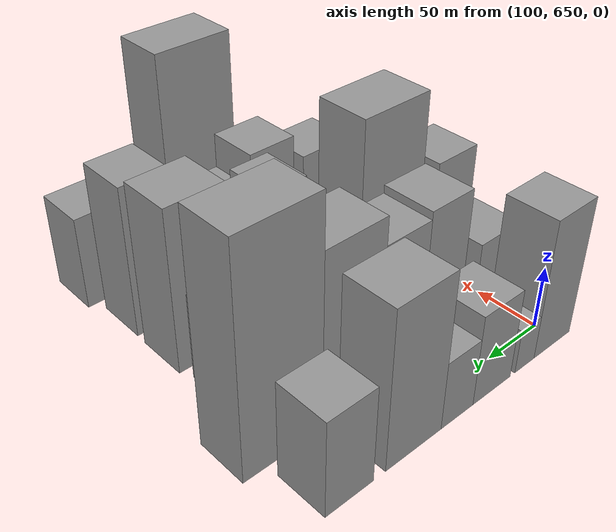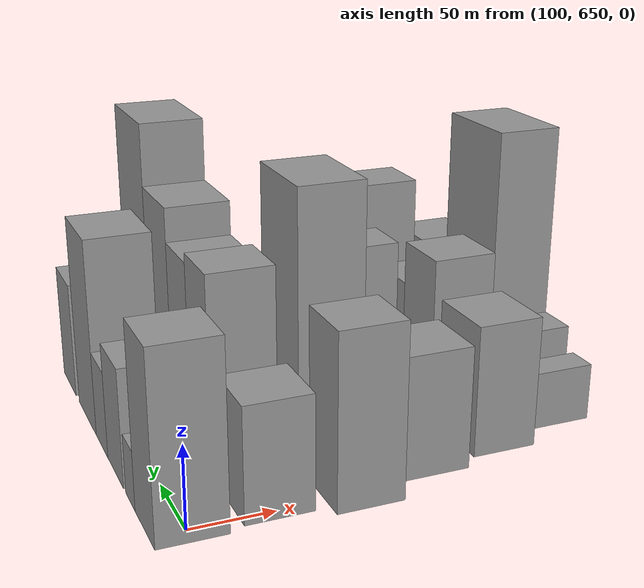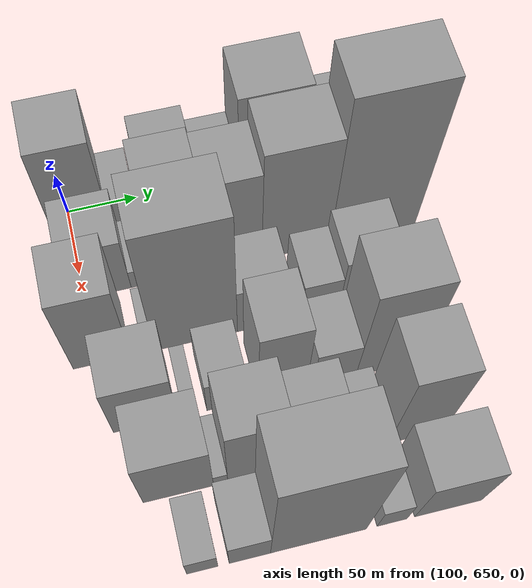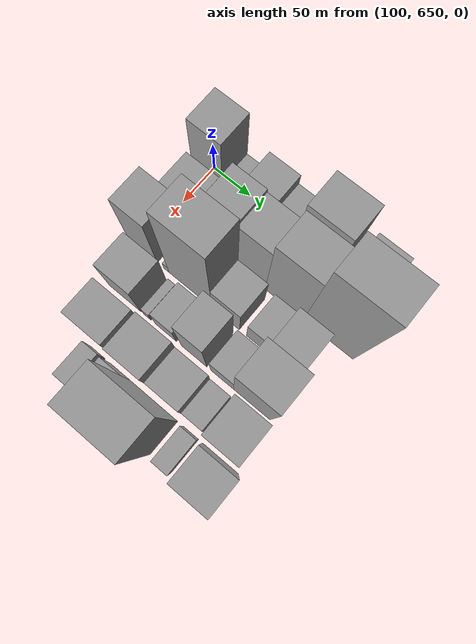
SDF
<sdf version="1.6">
 <world name="default">
  <model name="building_40">
   <static>1</static>
   <pose>100.0000 657.9605 0 0.000000 0.000000 0.000000</pose>
   <link name="link">
    <pose>0 0 55.50 0 0 0</pose>
    <collision name="collision"><geometry><box><size>40.0000 39.8559 111.0000</size></box></geometry></collision>
    <visual name="visual">
     <cast_shadows>0</cast_shadows>
     <geometry><box><size>40.0000 39.8559 111.0000</size></box></geometry>
     <material>
      <script>
       <uri>model://grey_wall/materials/scripts</uri>
       <uri>model://grey_wall/materials/textures</uri>
       <name>vrc/grey_wall</name>
      </script>
     </material>
    </visual>
   </link>
  </model>
  <model name="building_41">
   <static>1</static>
   <pose>100.0000 688.1823 0 0.000000 0.000000 0.000000</pose>
   <link name="link">
    <pose>0 0 18.00 0 0 0</pose>
    <collision name="collision"><geometry><box><size>40.0000 20.5877 36.0000</size></box></geometry></collision>
    <visual name="visual">
     <cast_shadows>0</cast_shadows>
     <geometry><box><size>40.0000 20.5877 36.0000</size></box></geometry>
     <material>
      <script>
       <uri>model://grey_wall/materials/scripts</uri>
       <uri>model://grey_wall/materials/textures</uri>
       <name>vrc/grey_wall</name>
      </script>
     </material>
    </visual>
   </link>
  </model>
  <model name="building_42">
   <static>1</static>
   <pose>100.0000 722.3112 0 0.000000 0.000000 0.000000</pose>
   <link name="link">
    <pose>0 0 36.00 0 0 0</pose>
    <collision name="collision"><geometry><box><size>40.0000 37.6702 72.0000</size></box></geometry></collision>
    <visual name="visual">
     <cast_shadows>0</cast_shadows>
     <geometry><box><size>40.0000 37.6702 72.0000</size></box></geometry>
     <material>
      <script>
       <uri>model://grey_wall/materials/scripts</uri>
       <uri>model://grey_wall/materials/textures</uri>
       <name>vrc/grey_wall</name>
      </script>
     </material>
    </visual>
   </link>
  </model>
  <model name="building_43">
   <static>1</static>
   <pose>100.0000 756.2850 0 0.000000 0.000000 0.000000</pose>
   <link name="link">
    <pose>0 0 27.00 0 0 0</pose>
    <collision name="collision"><geometry><box><size>40.0000 30.2773 54.0000</size></box></geometry></collision>
    <visual name="visual">
     <cast_shadows>0</cast_shadows>
     <geometry><box><size>40.0000 30.2773 54.0000</size></box></geometry>
     <material>
      <script>
       <uri>model://grey_wall/materials/scripts</uri>
       <uri>model://grey_wall/materials/textures</uri>
       <name>vrc/grey_wall</name>
      </script>
     </material>
    </visual>
   </link>
  </model>
  <model name="building_44">
   <static>1</static>
   <pose>100.0000 795.8376 0 0.000000 0.000000 0.000000</pose>
   <link name="link">
    <pose>0 0 61.50 0 0 0</pose>
    <collision name="collision"><geometry><box><size>40.0000 48.8279 123.0000</size></box></geometry></collision>
    <visual name="visual">
     <cast_shadows>0</cast_shadows>
     <geometry><box><size>40.0000 48.8279 123.0000</size></box></geometry>
     <material>
      <script>
       <uri>model://grey_wall/materials/scripts</uri>
       <uri>model://grey_wall/materials/textures</uri>
       <name>vrc/grey_wall</name>
      </script>
     </material>
    </visual>
   </link>
  </model>
  <model name="building_45">
   <static>1</static>
   <pose>100.0000 849.3882 0 0.000000 0.000000 0.000000</pose>
   <link name="link">
    <pose>0 0 37.50 0 0 0</pose>
    <collision name="collision"><geometry><box><size>40.0000 38.2733 75.0000</size></box></geometry></collision>
    <visual name="visual">
     <cast_shadows>0</cast_shadows>
     <geometry><box><size>40.0000 38.2733 75.0000</size></box></geometry>
     <material>
      <script>
       <uri>model://grey_wall/materials/scripts</uri>
       <uri>model://grey_wall/materials/textures</uri>
       <name>vrc/grey_wall</name>
      </script>
     </material>
    </visual>
   </link>
  </model>
  <model name="building_90">
   <static>1</static>
   <pose>149.0000 662.5540 0 0.000000 0.000000 0.000000</pose>
   <link name="link">
    <pose>0 0 34.50 0 0 0</pose>
    <collision name="collision"><geometry><box><size>40.0000 40.6685 69.0000</size></box></geometry></collision>
    <visual name="visual">
     <cast_shadows>0</cast_shadows>
     <geometry><box><size>40.0000 40.6685 69.0000</size></box></geometry>
     <material>
      <script>
       <uri>model://grey_wall/materials/scripts</uri>
       <uri>model://grey_wall/materials/textures</uri>
       <name>vrc/grey_wall</name>
      </script>
     </material>
    </visual>
   </link>
  </model>
  <model name="building_91">
   <static>1</static>
   <pose>149.0000 688.4616 0 0.000000 0.000000 0.000000</pose>
   <link name="link">
    <pose>0 0 12.00 0 0 0</pose>
    <collision name="collision"><geometry><box><size>40.0000 11.1467 24.0000</size></box></geometry></collision>
    <visual name="visual">
     <cast_shadows>0</cast_shadows>
     <geometry><box><size>40.0000 11.1467 24.0000</size></box></geometry>
     <material>
      <script>
       <uri>model://grey_wall/materials/scripts</uri>
       <uri>model://grey_wall/materials/textures</uri>
       <name>vrc/grey_wall</name>
      </script>
     </material>
    </visual>
   </link>
  </model>
  <model name="building_92">
   <static>1</static>
   <pose>149.0000 717.9925 0 0.000000 0.000000 0.000000</pose>
   <link name="link">
    <pose>0 0 60.00 0 0 0</pose>
    <collision name="collision"><geometry><box><size>40.0000 37.9150 120.0000</size></box></geometry></collision>
    <visual name="visual">
     <cast_shadows>0</cast_shadows>
     <geometry><box><size>40.0000 37.9150 120.0000</size></box></geometry>
     <material>
      <script>
       <uri>model://grey_wall/materials/scripts</uri>
       <uri>model://grey_wall/materials/textures</uri>
       <name>vrc/grey_wall</name>
      </script>
     </material>
    </visual>
   </link>
  </model>
  <model name="building_93">
   <static>1</static>
   <pose>149.0000 756.2262 0 0.000000 0.000000 0.000000</pose>
   <link name="link">
    <pose>0 0 57.00 0 0 0</pose>
    <collision name="collision"><geometry><box><size>40.0000 38.5523 114.0000</size></box></geometry></collision>
    <visual name="visual">
     <cast_shadows>0</cast_shadows>
     <geometry><box><size>40.0000 38.5523 114.0000</size></box></geometry>
     <material>
      <script>
       <uri>model://grey_wall/materials/scripts</uri>
       <uri>model://grey_wall/materials/textures</uri>
       <name>vrc/grey_wall</name>
      </script>
     </material>
    </visual>
   </link>
  </model>
  <model name="building_94">
   <static>1</static>
   <pose>149.0000 800.0912 0 0.000000 0.000000 0.000000</pose>
   <link name="link">
    <pose>0 0 67.50 0 0 0</pose>
    <collision name="collision"><geometry><box><size>40.0000 49.1777 135.0000</size></box></geometry></collision>
    <visual name="visual">
     <cast_shadows>0</cast_shadows>
     <geometry><box><size>40.0000 49.1777 135.0000</size></box></geometry>
     <material>
      <script>
       <uri>model://grey_wall/materials/scripts</uri>
       <uri>model://grey_wall/materials/textures</uri>
       <name>vrc/grey_wall</name>
      </script>
     </material>
    </visual>
   </link>
  </model>
  <model name="building_95">
   <static>1</static>
   <pose>149.0000 855.8932 0 0.000000 0.000000 0.000000</pose>
   <link name="link">
    <pose>0 0 87.00 0 0 0</pose>
    <collision name="collision"><geometry><box><size>40.0000 62.4264 174.0000</size></box></geometry></collision>
    <visual name="visual">
     <cast_shadows>0</cast_shadows>
     <geometry><box><size>40.0000 62.4264 174.0000</size></box></geometry>
     <material>
      <script>
       <uri>model://grey_wall/materials/scripts</uri>
       <uri>model://grey_wall/materials/textures</uri>
       <name>vrc/grey_wall</name>
      </script>
     </material>
    </visual>
   </link>
  </model>
  <model name="building_136">
   <static>1</static>
   <pose>198.0000 653.6606 0 0.000000 0.000000 0.000000</pose>
   <link name="link">
    <pose>0 0 52.50 0 0 0</pose>
    <collision name="collision"><geometry><box><size>40.0000 38.9790 105.0000</size></box></geometry></collision>
    <visual name="visual">
     <cast_shadows>0</cast_shadows>
     <geometry><box><size>40.0000 38.9790 105.0000</size></box></geometry>
     <material>
      <script>
       <uri>model://grey_wall/materials/scripts</uri>
       <uri>model://grey_wall/materials/textures</uri>
       <name>vrc/grey_wall</name>
      </script>
     </material>
    </visual>
   </link>
  </model>
  <model name="building_137">
   <static>1</static>
   <pose>198.0000 685.7514 0 0.000000 0.000000 0.000000</pose>
   <link name="link">
    <pose>0 0 9.00 0 0 0</pose>
    <collision name="collision"><geometry><box><size>40.0000 7.2027 18.0000</size></box></geometry></collision>
    <visual name="visual">
     <cast_shadows>0</cast_shadows>
     <geometry><box><size>40.0000 7.2027 18.0000</size></box></geometry>
     <material>
      <script>
       <uri>model://grey_wall/materials/scripts</uri>
       <uri>model://grey_wall/materials/textures</uri>
       <name>vrc/grey_wall</name>
      </script>
     </material>
    </visual>
   </link>
  </model>
  <model name="building_138">
   <static>1</static>
   <pose>198.0000 717.8626 0 0.000000 0.000000 0.000000</pose>
   <link name="link">
    <pose>0 0 82.50 0 0 0</pose>
    <collision name="collision"><geometry><box><size>40.0000 57.0197 165.0000</size></box></geometry></collision>
    <visual name="visual">
     <cast_shadows>0</cast_shadows>
     <geometry><box><size>40.0000 57.0197 165.0000</size></box></geometry>
     <material>
      <script>
       <uri>model://grey_wall/materials/scripts</uri>
       <uri>model://grey_wall/materials/textures</uri>
       <name>vrc/grey_wall</name>
      </script>
     </material>
    </visual>
   </link>
  </model>
  <model name="building_139">
   <static>1</static>
   <pose>198.0000 764.2651 0 0.000000 0.000000 0.000000</pose>
   <link name="link">
    <pose>0 0 31.50 0 0 0</pose>
    <collision name="collision"><geometry><box><size>40.0000 35.7853 63.0000</size></box></geometry></collision>
    <visual name="visual">
     <cast_shadows>0</cast_shadows>
     <geometry><box><size>40.0000 35.7853 63.0000</size></box></geometry>
     <material>
      <script>
       <uri>model://grey_wall/materials/scripts</uri>
       <uri>model://grey_wall/materials/textures</uri>
       <name>vrc/grey_wall</name>
      </script>
     </material>
    </visual>
   </link>
  </model>
  <model name="building_140">
   <static>1</static>
   <pose>198.0000 804.3659 0 0.000000 0.000000 0.000000</pose>
   <link name="link">
    <pose>0 0 24.00 0 0 0</pose>
    <collision name="collision"><geometry><box><size>40.0000 26.4164 48.0000</size></box></geometry></collision>
    <visual name="visual">
     <cast_shadows>0</cast_shadows>
     <geometry><box><size>40.0000 26.4164 48.0000</size></box></geometry>
     <material>
      <script>
       <uri>model://grey_wall/materials/scripts</uri>
       <uri>model://grey_wall/materials/textures</uri>
       <name>vrc/grey_wall</name>
      </script>
     </material>
    </visual>
   </link>
  </model>
  <model name="building_141">
   <static>1</static>
   <pose>198.0000 836.8367 0 0.000000 0.000000 0.000000</pose>
   <link name="link">
    <pose>0 0 34.50 0 0 0</pose>
    <collision name="collision"><geometry><box><size>40.0000 38.5252 69.0000</size></box></geometry></collision>
    <visual name="visual">
     <cast_shadows>0</cast_shadows>
     <geometry><box><size>40.0000 38.5252 69.0000</size></box></geometry>
     <material>
      <script>
       <uri>model://grey_wall/materials/scripts</uri>
       <uri>model://grey_wall/materials/textures</uri>
       <name>vrc/grey_wall</name>
      </script>
     </material>
    </visual>
   </link>
  </model>
  <model name="building_183">
   <static>1</static>
   <pose>247.0000 673.3629 0 0.000000 0.000000 0.000000</pose>
   <link name="link">
    <pose>0 0 37.50 0 0 0</pose>
    <collision name="collision"><geometry><box><size>40.0000 42.2951 75.0000</size></box></geometry></collision>
    <visual name="visual">
     <cast_shadows>0</cast_shadows>
     <geometry><box><size>40.0000 42.2951 75.0000</size></box></geometry>
     <material>
      <script>
       <uri>model://grey_wall/materials/scripts</uri>
       <uri>model://grey_wall/materials/textures</uri>
       <name>vrc/grey_wall</name>
      </script>
     </material>
    </visual>
   </link>
  </model>
  <model name="building_184">
   <static>1</static>
   <pose>247.0000 703.3257 0 0.000000 0.000000 0.000000</pose>
   <link name="link">
    <pose>0 0 12.00 0 0 0</pose>
    <collision name="collision"><geometry><box><size>40.0000 9.6305 24.0000</size></box></geometry></collision>
    <visual name="visual">
     <cast_shadows>0</cast_shadows>
     <geometry><box><size>40.0000 9.6305 24.0000</size></box></geometry>
     <material>
      <script>
       <uri>model://grey_wall/materials/scripts</uri>
       <uri>model://grey_wall/materials/textures</uri>
       <name>vrc/grey_wall</name>
      </script>
     </material>
    </visual>
   </link>
  </model>
  <model name="building_185">
   <static>1</static>
   <pose>247.0000 727.8617 0 0.000000 0.000000 0.000000</pose>
   <link name="link">
    <pose>0 0 24.00 0 0 0</pose>
    <collision name="collision"><geometry><box><size>40.0000 27.4417 48.0000</size></box></geometry></collision>
    <visual name="visual">
     <cast_shadows>0</cast_shadows>
     <geometry><box><size>40.0000 27.4417 48.0000</size></box></geometry>
     <material>
      <script>
       <uri>model://grey_wall/materials/scripts</uri>
       <uri>model://grey_wall/materials/textures</uri>
       <name>vrc/grey_wall</name>
      </script>
     </material>
    </visual>
   </link>
  </model>
  <model name="building_186">
   <static>1</static>
   <pose>247.0000 764.8853 0 0.000000 0.000000 0.000000</pose>
   <link name="link">
    <pose>0 0 52.50 0 0 0</pose>
    <collision name="collision"><geometry><box><size>40.0000 32.6053 105.0000</size></box></geometry></collision>
    <visual name="visual">
     <cast_shadows>0</cast_shadows>
     <geometry><box><size>40.0000 32.6053 105.0000</size></box></geometry>
     <material>
      <script>
       <uri>model://grey_wall/materials/scripts</uri>
       <uri>model://grey_wall/materials/textures</uri>
       <name>vrc/grey_wall</name>
      </script>
     </material>
    </visual>
   </link>
  </model>
  <model name="building_187">
   <static>1</static>
   <pose>247.0000 800.7090 0 0.000000 0.000000 0.000000</pose>
   <link name="link">
    <pose>0 0 27.00 0 0 0</pose>
    <collision name="collision"><geometry><box><size>40.0000 29.0421 54.0000</size></box></geometry></collision>
    <visual name="visual">
     <cast_shadows>0</cast_shadows>
     <geometry><box><size>40.0000 29.0421 54.0000</size></box></geometry>
     <material>
      <script>
       <uri>model://grey_wall/materials/scripts</uri>
       <uri>model://grey_wall/materials/textures</uri>
       <name>vrc/grey_wall</name>
      </script>
     </material>
    </visual>
   </link>
  </model>
  <model name="building_188">
   <static>1</static>
   <pose>247.0000 838.0198 0 0.000000 0.000000 0.000000</pose>
   <link name="link">
    <pose>0 0 64.50 0 0 0</pose>
    <collision name="collision"><geometry><box><size>40.0000 45.5796 129.0000</size></box></geometry></collision>
    <visual name="visual">
     <cast_shadows>0</cast_shadows>
     <geometry><box><size>40.0000 45.5796 129.0000</size></box></geometry>
     <material>
      <script>
       <uri>model://grey_wall/materials/scripts</uri>
       <uri>model://grey_wall/materials/textures</uri>
       <name>vrc/grey_wall</name>
      </script>
     </material>
    </visual>
   </link>
  </model>
  <model name="building_229">
   <static>1</static>
   <pose>296.0000 684.6895 0 0.000000 0.000000 0.000000</pose>
   <link name="link">
    <pose>0 0 40.50 0 0 0</pose>
    <collision name="collision"><geometry><box><size>40.0000 45.4022 81.0000</size></box></geometry></collision>
    <visual name="visual">
     <cast_shadows>0</cast_shadows>
     <geometry><box><size>40.0000 45.4022 81.0000</size></box></geometry>
     <material>
      <script>
       <uri>model://grey_wall/materials/scripts</uri>
       <uri>model://grey_wall/materials/textures</uri>
       <name>vrc/grey_wall</name>
      </script>
     </material>
    </visual>
   </link>
  </model>
  <model name="building_230">
   <static>1</static>
   <pose>296.0000 712.0166 0 0.000000 0.000000 0.000000</pose>
   <link name="link">
    <pose>0 0 10.50 0 0 0</pose>
    <collision name="collision"><geometry><box><size>40.0000 9.2519 21.0000</size></box></geometry></collision>
    <visual name="visual">
     <cast_shadows>0</cast_shadows>
     <geometry><box><size>40.0000 9.2519 21.0000</size></box></geometry>
     <material>
      <script>
       <uri>model://grey_wall/materials/scripts</uri>
       <uri>model://grey_wall/materials/textures</uri>
       <name>vrc/grey_wall</name>
      </script>
     </material>
    </visual>
   </link>
  </model>
  <model name="building_231">
   <static>1</static>
   <pose>296.0000 736.5238 0 0.000000 0.000000 0.000000</pose>
   <link name="link">
    <pose>0 0 51.00 0 0 0</pose>
    <collision name="collision"><geometry><box><size>40.0000 39.7626 102.0000</size></box></geometry></collision>
    <visual name="visual">
     <cast_shadows>0</cast_shadows>
     <geometry><box><size>40.0000 39.7626 102.0000</size></box></geometry>
     <material>
      <script>
       <uri>model://grey_wall/materials/scripts</uri>
       <uri>model://grey_wall/materials/textures</uri>
       <name>vrc/grey_wall</name>
      </script>
     </material>
    </visual>
   </link>
  </model>
  <model name="building_232">
   <static>1</static>
   <pose>296.0000 775.4125 0 0.000000 0.000000 0.000000</pose>
   <link name="link">
    <pose>0 0 37.50 0 0 0</pose>
    <collision name="collision"><geometry><box><size>40.0000 38.0148 75.0000</size></box></geometry></collision>
    <visual name="visual">
     <cast_shadows>0</cast_shadows>
     <geometry><box><size>40.0000 38.0148 75.0000</size></box></geometry>
     <material>
      <script>
       <uri>model://grey_wall/materials/scripts</uri>
       <uri>model://grey_wall/materials/textures</uri>
       <name>vrc/grey_wall</name>
      </script>
     </material>
    </visual>
   </link>
  </model>
  <model name="building_233">
   <static>1</static>
   <pose>296.0000 806.7467 0 0.000000 0.000000 0.000000</pose>
   <link name="link">
    <pose>0 0 21.00 0 0 0</pose>
    <collision name="collision"><geometry><box><size>40.0000 24.6537 42.0000</size></box></geometry></collision>
    <visual name="visual">
     <cast_shadows>0</cast_shadows>
     <geometry><box><size>40.0000 24.6537 42.0000</size></box></geometry>
     <material>
      <script>
       <uri>model://grey_wall/materials/scripts</uri>
       <uri>model://grey_wall/materials/textures</uri>
       <name>vrc/grey_wall</name>
      </script>
     </material>
    </visual>
   </link>
  </model>
  <model name="building_234">
   <static>1</static>
   <pose>296.0000 841.7503 0 0.000000 0.000000 0.000000</pose>
   <link name="link">
    <pose>0 0 60.00 0 0 0</pose>
    <collision name="collision"><geometry><box><size>40.0000 37.3534 120.0000</size></box></geometry></collision>
    <visual name="visual">
     <cast_shadows>0</cast_shadows>
     <geometry><box><size>40.0000 37.3534 120.0000</size></box></geometry>
     <material>
      <script>
       <uri>model://grey_wall/materials/scripts</uri>
       <uri>model://grey_wall/materials/textures</uri>
       <name>vrc/grey_wall</name>
      </script>
     </material>
    </visual>
   </link>
  </model>
  <model name="building_274">
   <static>1</static>
   <pose>345.0000 689.2186 0 0.000000 0.000000 0.000000</pose>
   <link name="link">
    <pose>0 0 18.00 0 0 0</pose>
    <collision name="collision"><geometry><box><size>40.0000 19.5279 36.0000</size></box></geometry></collision>
    <visual name="visual">
     <cast_shadows>0</cast_shadows>
     <geometry><box><size>40.0000 19.5279 36.0000</size></box></geometry>
     <material>
      <script>
       <uri>model://grey_wall/materials/scripts</uri>
       <uri>model://grey_wall/materials/textures</uri>
       <name>vrc/grey_wall</name>
      </script>
     </material>
    </visual>
   </link>
  </model>
  <model name="building_275">
   <static>1</static>
   <pose>345.0000 719.0296 0 0.000000 0.000000 0.000000</pose>
   <link name="link">
    <pose>0 0 25.50 0 0 0</pose>
    <collision name="collision"><geometry><box><size>40.0000 26.0942 51.0000</size></box></geometry></collision>
    <visual name="visual">
     <cast_shadows>0</cast_shadows>
     <geometry><box><size>40.0000 26.0942 51.0000</size></box></geometry>
     <material>
      <script>
       <uri>model://grey_wall/materials/scripts</uri>
       <uri>model://grey_wall/materials/textures</uri>
       <name>vrc/grey_wall</name>
      </script>
     </material>
    </visual>
   </link>
  </model>
  <model name="building_276">
   <static>1</static>
   <pose>345.0000 762.8255 0 0.000000 0.000000 0.000000</pose>
   <link name="link">
    <pose>0 0 85.50 0 0 0</pose>
    <collision name="collision"><geometry><box><size>40.0000 61.4976 171.0000</size></box></geometry></collision>
    <visual name="visual">
     <cast_shadows>0</cast_shadows>
     <geometry><box><size>40.0000 61.4976 171.0000</size></box></geometry>
     <material>
      <script>
       <uri>model://grey_wall/materials/scripts</uri>
       <uri>model://grey_wall/materials/textures</uri>
       <name>vrc/grey_wall</name>
      </script>
     </material>
    </visual>
   </link>
  </model>
  <model name="building_277">
   <static>1</static>
   <pose>345.0000 810.3270 0 0.000000 0.000000 0.000000</pose>
   <link name="link">
    <pose>0 0 19.50 0 0 0</pose>
    <collision name="collision"><geometry><box><size>40.0000 19.5055 39.0000</size></box></geometry></collision>
    <visual name="visual">
     <cast_shadows>0</cast_shadows>
     <geometry><box><size>40.0000 19.5055 39.0000</size></box></geometry>
     <material>
      <script>
       <uri>model://grey_wall/materials/scripts</uri>
       <uri>model://grey_wall/materials/textures</uri>
       <name>vrc/grey_wall</name>
      </script>
     </material>
    </visual>
   </link>
  </model>
  <model name="building_278">
   <static>1</static>
   <pose>345.0000 847.1673 0 0.000000 0.000000 0.000000</pose>
   <link name="link">
    <pose>0 0 37.50 0 0 0</pose>
    <collision name="collision"><geometry><box><size>40.0000 44.1752 75.0000</size></box></geometry></collision>
    <visual name="visual">
     <cast_shadows>0</cast_shadows>
     <geometry><box><size>40.0000 44.1752 75.0000</size></box></geometry>
     <material>
      <script>
       <uri>model://grey_wall/materials/scripts</uri>
       <uri>model://grey_wall/materials/textures</uri>
       <name>vrc/grey_wall</name>
      </script>
     </material>
    </visual>
   </link>
  </model>
 </world>
</sdf>
